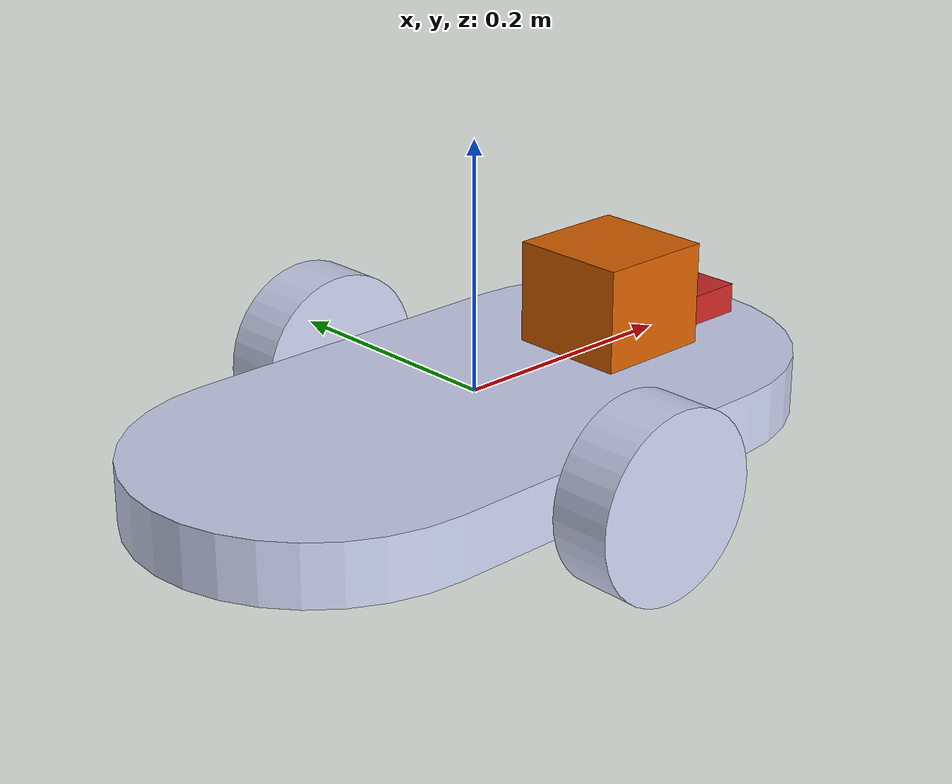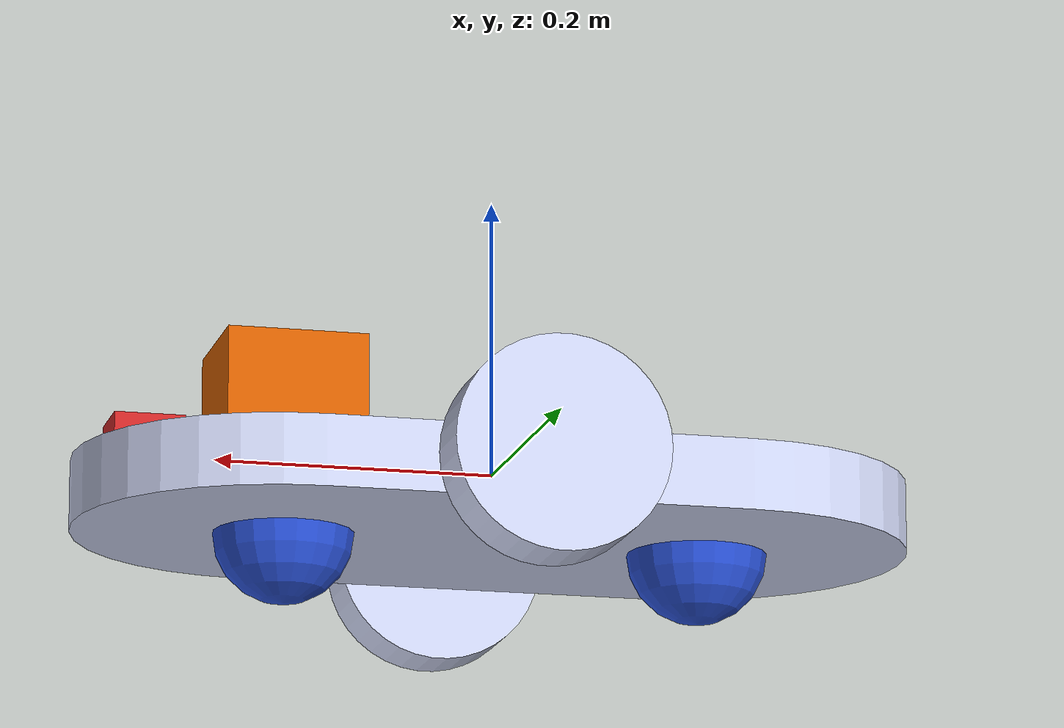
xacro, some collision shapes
<?xml version="1.0" encoding="utf-8"?>
<robot
  name="my_robot" xmlns:xacro="http://www.ros.org/wiki/xacro">

  <xacro:include filename="$(find my_robot)/urdf/my_robot.gazebo" />

  <gazebo reference="leftwheel">
      <material>Gazebo/Green</material>
  </gazebo>

  <gazebo reference="rightwheel">
      <material>Gazebo/Green</material>
  </gazebo>

  <gazebo reference="camera">
      <material>Gazebo/Red</material>
  </gazebo>

  <gazebo reference="base_link">
      <material>Gazebo/Blue</material>
  </gazebo>

  <link name="robot_footprint"></link>

  <joint name="robot_footprint_joint" type="fixed">
    <origin xyz="0 0 0" rpy="0 0 0" />
    <parent link="robot_footprint"/>
    <child link="base_link" />
  </joint>

   <link
    name="base_link">
    <inertial>
      <origin
        xyz="-5.55111512312578E-17 5.55111512312578E-17 -0.025"
        rpy="0 0 0" />
      <mass
        value="7.8222342311712" />
      <inertia
        ixx="0.0537018422736966"
        ixy="3.24674209290395E-17"
        ixz="2.51862423422907E-19"
        iyy="0.202301909363961"
        iyz="-4.51750905202295E-19"
        izz="0.252679986550501" />
    </inertial>
    <visual>
      <origin
        xyz="0 0 0"
        rpy="0 0 0" />
      <geometry>
        <mesh
          filename="package://my_robot/meshes/base_link.STL" />
      </geometry>
      <material
        name="">
        <color
          rgba="0.792156862745098 0.819607843137255 0.933333333333333 1" />
      </material>
    </visual>
    <collision>
      <origin
        xyz="0 0 0"
        rpy="0 0 0" />
      <geometry>
        <mesh
          filename="package://my_robot/meshes/base_link.STL" />
      </geometry>
    </collision>
    <collision name='back_caster_collision'>
      <origin xyz="-0.15 0 -0.05" rpy=" 0 0 0"/>
      <geometry>
        <sphere radius="0.0499"/>
      </geometry>
    </collision>

    <visual name='back_caster_visual'>
      <origin xyz="-0.15 0 -0.05" rpy=" 0 0 0"/>
      <geometry>
        <sphere radius="0.05"/>
      </geometry>
    </visual>

    <collision name='front_caster_collision'>
      <origin xyz="0.15 0 -0.05" rpy=" 0 0 0"/>
      <geometry>
        <sphere radius="0.0499"/>
      </geometry>
    </collision>

    <visual name='front_caster_visual'>
      <origin xyz="0.15 0 -0.05" rpy=" 0 0 0"/>
      <geometry>
        <sphere radius="0.05"/>
      </geometry>
    </visual>
  </link>
  <link
    name="leftwheel">
    <inertial>
      <origin
        xyz="1.3878E-17 -0.025313 0"
        rpy="0 0 0" />
      <mass
        value="0.89098" />
      <inertia
        ixx="0.0014378"
        ixy="-3.5354E-20"
        ixz="-2.8625E-36"
        iyy="0.0024854"
        iyz="-2.978E-36"
        izz="0.0014378" />
    </inertial>
    <visual>
      <origin
        xyz="0 0 0"
        rpy="0 0 0" />
      <geometry>
        <mesh
          filename="package://my_robot/meshes/leftwheel.STL" />
      </geometry>
      <material
        name="">
        <color
          rgba="0.79216 0.81961 0.93333 1" />
      </material>
    </visual>
    <collision>
      <origin xyz="0 0 0" rpy="0 1.5707 1.5707"/>
      <geometry>
        <cylinder radius="0.075" length="0.05"/>
      </geometry>
    </collision>
  </link>
  <joint
    name="leftjoint"
    type="continuous">
    <origin
      xyz="0 0.21 -0.025"
      rpy="0 0 0" />
    <parent
      link="base_link" />
    <child
      link="leftwheel" />
    <axis
      xyz="0 1 0" />
      <limit effort="10000" velocity="1000"/>
    <dynamics damping="1.0" friction="1.0"/>
  </joint>
  <link
    name="rightwheel">
    <inertial>
      <origin
        xyz="1.3878E-17 -0.025313 0"
        rpy="0 0 0" />
      <mass
        value="0.89098" />
      <inertia
        ixx="0.0014378"
        ixy="-1.8848E-19"
        ixz="-1.1825E-19"
        iyy="0.0024854"
        iyz="-1.7407E-20"
        izz="0.0014378" />
    </inertial>
    <visual>
      <origin
        xyz="0 0 0"
        rpy="0 0 0" />
      <geometry>
        <mesh
          filename="package://my_robot/meshes/rightwheel.STL" />
      </geometry>
      <material
        name="">
        <color
          rgba="0.79216 0.81961 0.93333 1" />
      </material>
    </visual>
   <collision>
      <origin xyz="0 0 0" rpy="0 1.5707 1.5707"/>
      <geometry>
        <cylinder radius="0.075" length="0.05"/>
      </geometry>
    </collision>
  </link>
  <joint
    name="rightjoint"
    type="continuous">
    <origin
      xyz="0 -0.21 -0.025"
      rpy="0 0 3.14159265358979" />
    <parent
      link="base_link" />
    <child
      link="rightwheel" />
    <axis
      xyz="0 -1 0" />
      <limit effort="10000" velocity="1000"/>
    <dynamics damping="1.0" friction="1.0"/>
  </joint>

  <link
    name="camera">
    <inertial>
      <origin
        xyz=".05 .05 .05"
        rpy="0 0 0" />
      <mass
        value="0.1" />
      <inertia
        ixx="1E-6"
        ixy="0"
        ixz="0"
        iyy="1E-6"
        iyz="0"
        izz="1E-6" />
    </inertial>
    <visual>
      <origin
        xyz="0 0 0"
        rpy="0 0 0" />
      <geometry>
        <box size=".05 .05 .05"/>
      </geometry>
    </visual>
    <collision>
      <origin
        xyz="0 0 0"
        rpy="0 0 0" />
      <geometry>
        <box size=".05 .05 .05"/>
      </geometry>
    </collision>
  </link>
  <joint
    name="camera_joint"
    type="fixed">
    <origin
      xyz="0.25 0 0"
      rpy="0 0 0" />
    <parent
      link="base_link" />
    <child
      link="camera" />
    <axis
      xyz="0 1 0" />
  </joint>

  <!-- Lidar -->
  <link
    name="hokuyo">
    <inertial>
      <origin
        xyz="0 0 0"
        rpy="0 0 0" />
      <mass
        value="1E-5" />
      <inertia
        ixx="1E-6"
        ixy="0"
        ixz="0"
        iyy="1E-6"
        iyz="0"
        izz="1E-6" />
    </inertial>
    <visual>
      <origin
        xyz="0 0 0"
        rpy="0 0 0" />
      <geometry>
        <mesh
          filename="package://my_robot/meshes/hokuyo.dae" />
      </geometry>
    </visual>
    <collision>
      <origin
        xyz="0 0 0"
        rpy="0 0 0" />
      <geometry>
        <box size=".1 .1 .1"/>
      </geometry>
    </collision>
  </link>
  <joint
    name="hokuyo_joint"
    type="fixed">
    <origin
      xyz="0.15 0 0.035"
      rpy="0 0 0" />
    <parent
      link="base_link" />
    <child
      link="hokuyo" />
    <axis
      xyz="0 1 0" />
  </joint>
</robot>
